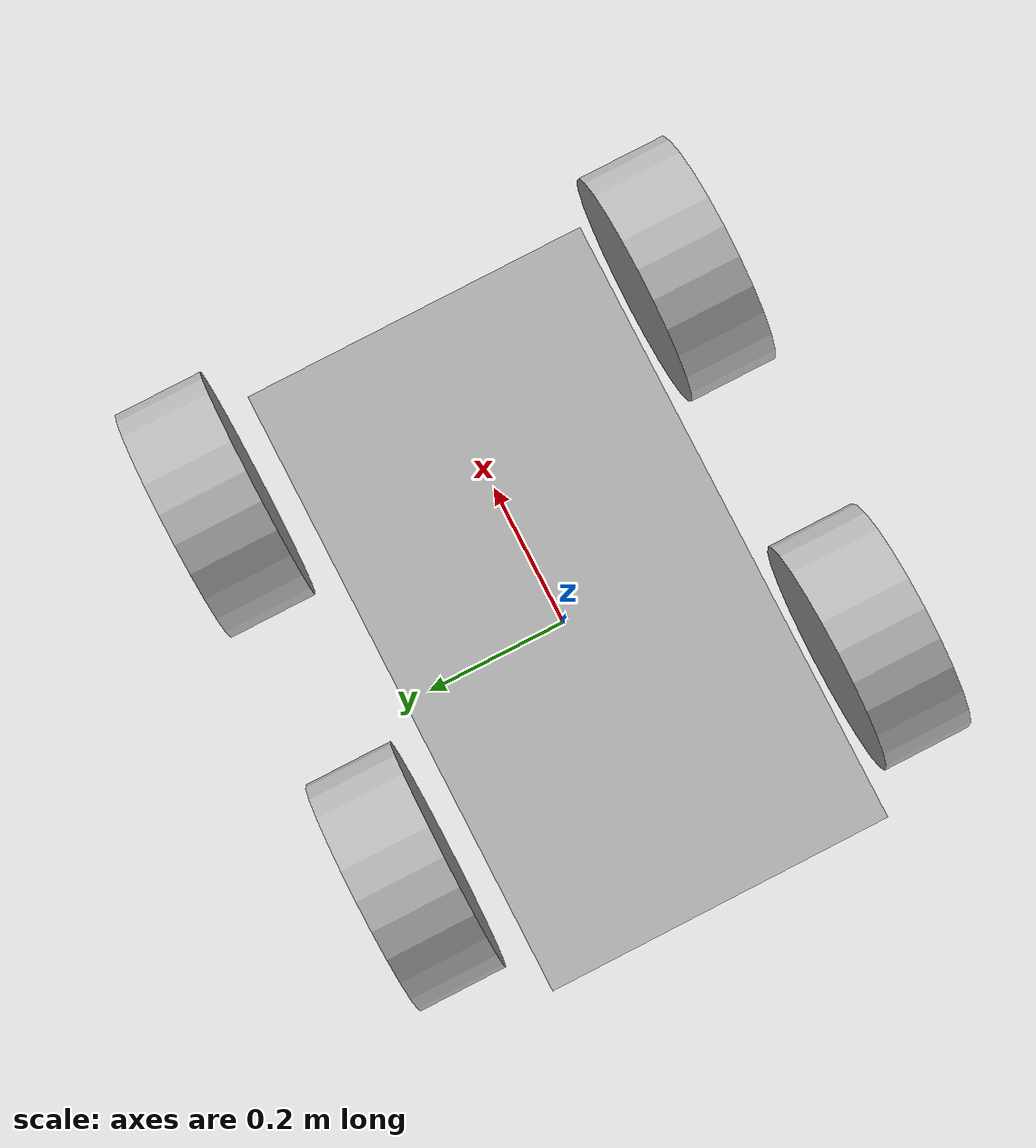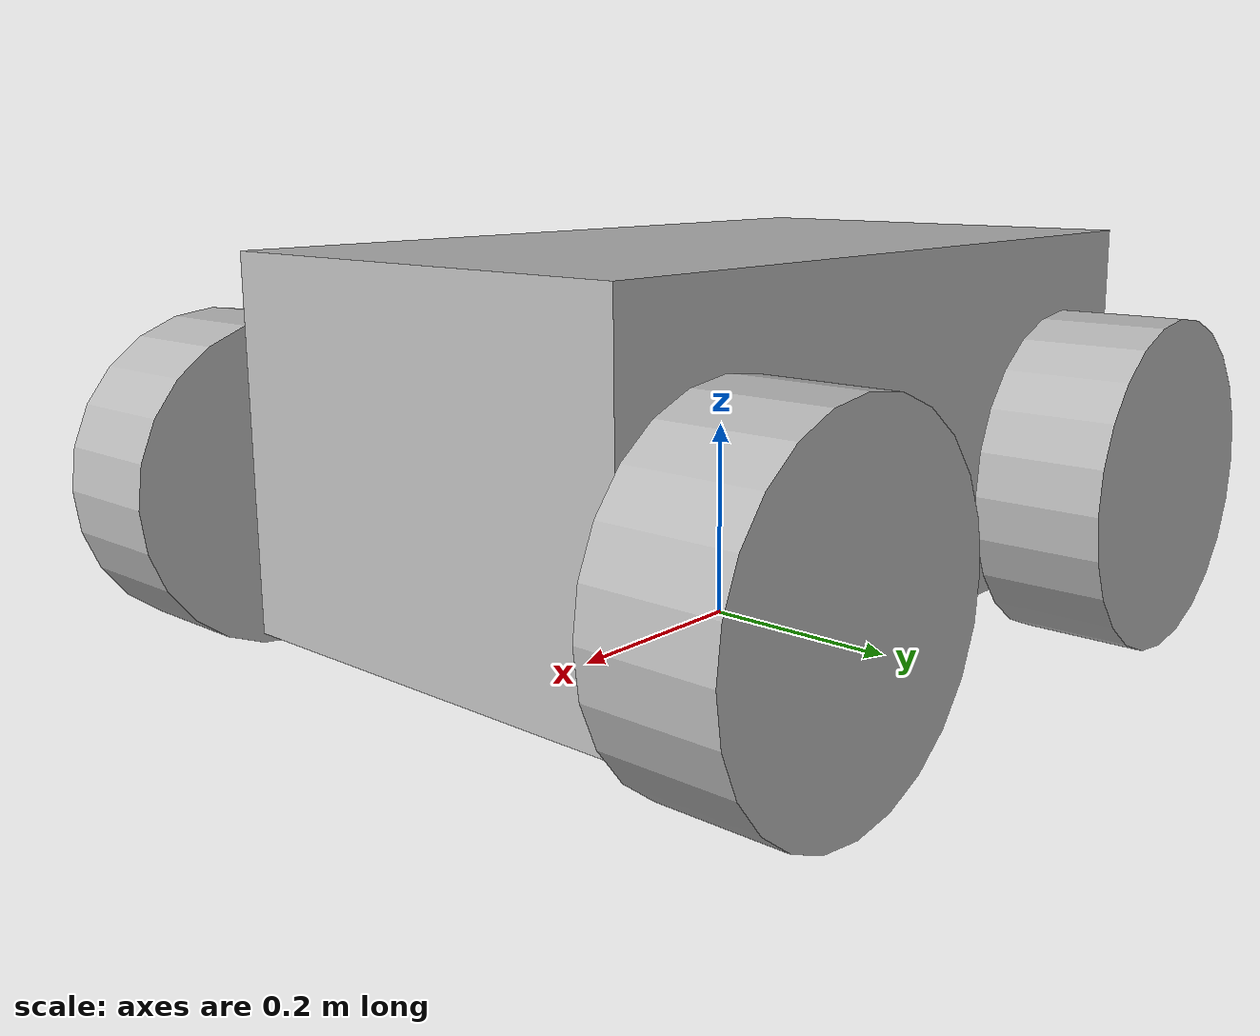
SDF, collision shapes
<?xml version="1.0" ?>

<sdf version="1.5">
  <model name="cart_soft_suspension">
    <link name="chassis">
      <pose>0 0 0.21 0 0 0</pose>
      <inertial>
        <pose>0.1 0 0  0 0 0</pose>
        <mass>40</mass>
        <inertia>
          <ixx>0.216666666666667</ixx>
          <iyy>0.841666666666667</iyy>
          <izz>1.04166666666667</izz>
          <ixy>0</ixy>
          <ixz>0</ixz>
          <iyz>0</iyz>
        </inertia>
      </inertial>
      <collision name='collision'>
        <geometry>
          <box>
            <size>.8 .45 .355</size>
          </box>
        </geometry>
        <surface>
          <friction>
            <ode>
              <mu>30</mu>
              <mu2>30</mu2>
            </ode>
          </friction>
        </surface>
      </collision>
      <visual name='visual'>
        <geometry>
          <mesh>
            <uri>model://gazebo_issue_1320/meshes/odg_alternate_skin.dae</uri>
            <scale>0.006 0.006 0.006</scale>
          </mesh>
        </geometry>
      </visual>
    </link>

    <link name="susp_front_right">
      <pose>0.33 -0.33 0.16  0 0 0</pose>
      <inertial>
        <mass>0.5</mass>
        <inertia>
          <ixx>0.000208333333333333</ixx>
          <iyy>0.000208333333333333</iyy>
          <izz>0.000208333333333333</izz>
          <ixy>0</ixy>
          <ixz>0</ixz>
          <iyz>0</iyz>
        </inertia>
      </inertial>
      <collision name="collision">
        <geometry>
          <box>
            <size>0.05 0.05 0.05</size>
          </box>
        </geometry>
      </collision>
      <visual name="visual">
        <geometry>
          <box>
            <size>0.05 0.05 0.05</size>
          </box>
        </geometry>
        <material>
          <script>
            <uri>gazebo.material</uri>
            <name>Gazebo/Black</name>
          </script>
        </material>
      </visual>
    </link>
    <joint name="susp_front_right_prismatic" type="prismatic">
      <parent>chassis</parent>
      <child>susp_front_right</child>
      <axis>
        <xyz>0 0 -1</xyz>
        <limit>
          <lower>-0.0375</lower>
          <upper>0.0375</upper>
        </limit>
        <dynamics>
          <damping>100</damping>
          <spring_stiffness>2500</spring_stiffness>
          <spring_reference>0.05</spring_reference>
        </dynamics>
      </axis>
      <physics>
        <ode>
          <implicit_spring_damper>1</implicit_spring_damper>
        </ode>
      </physics>
    </joint>
    <link name="wheel_front_right">
      <pose>0.33 -0.33 0.16 0 1.5707 1.5707</pose>
      <inertial>
        <mass>0.5</mass>
        <inertia>
          <ixx>0.00307916666666667</ixx>
          <iyy>0.00307916666666667</iyy>
          <izz>0.005625</izz>
          <ixy>0</ixy>
          <ixz>0</ixz>
          <iyz>0</iyz>
        </inertia>
      </inertial>
      <collision name="collision">
        <geometry>
          <cylinder>
            <radius>.16</radius>
            <length>.12</length>
          </cylinder>
        </geometry>
        <surface>
          <friction>
            <ode>
              <mu>30</mu>
              <mu2>30</mu2>
            </ode>
          </friction>
        </surface>
      </collision>

    </link>
    <joint name="wheel_front_right_spin" type="revolute">
      <pose>0 0 0.03 0 0 0</pose>
      <parent>susp_front_right</parent>
      <child>wheel_front_right</child>
      <axis>
        <xyz>0 0 1</xyz>
      </axis>
    </joint>

    <link name="susp_front_left">
      <pose>0.33 0.33 0.16  0 0 0</pose>
      <inertial>
        <mass>0.5</mass>
        <inertia>
          <ixx>0.000208333333333333</ixx>
          <iyy>0.000208333333333333</iyy>
          <izz>0.000208333333333333</izz>
          <ixy>0</ixy>
          <ixz>0</ixz>
          <iyz>0</iyz>
        </inertia>
      </inertial>
      <collision name="collision">
        <geometry>
          <box>
            <size>0.05 0.05 0.05</size>
          </box>
        </geometry>
      </collision>
      <visual name="visual">
        <geometry>
          <box>
            <size>0.05 0.05 0.05</size>
          </box>
        </geometry>
        <material>
          <script>
            <uri>gazebo.material</uri>
            <name>Gazebo/Black</name>
          </script>
        </material>
      </visual>
    </link>
    <joint name="susp_front_left_prismatic" type="prismatic">
      <parent>chassis</parent>
      <child>susp_front_left</child>
      <axis>
        <xyz>0 0 -1</xyz>
        <limit>
          <lower>-0.0375</lower>
          <upper>0.0375</upper>
        </limit>
        <dynamics>
          <damping>100</damping>
          <spring_stiffness>2500</spring_stiffness>
          <spring_reference>0.05</spring_reference>
        </dynamics>
      </axis>
      <physics>
        <ode>
          <implicit_spring_damper>1</implicit_spring_damper>
        </ode>
      </physics>
    </joint>
    <link name="wheel_front_left">
      <pose>0.33 0.33 0.16 0 1.5707 1.5707</pose>
      <inertial>
        <mass>0.5</mass>
        <inertia>
          <ixx>0.00307916666666667</ixx>
          <iyy>0.00307916666666667</iyy>
          <izz>0.005625</izz>
          <ixy>0</ixy>
          <ixz>0</ixz>
          <iyz>0</iyz>
        </inertia>
      </inertial>
      <collision name="collision">
        <geometry>
          <cylinder>
            <radius>.16</radius>
            <length>.12</length>
          </cylinder>
        </geometry>
        <surface>
          <friction>
            <ode>
              <mu>30</mu>
              <mu2>30</mu2>
            </ode>
          </friction>
        </surface>
      </collision>

    </link>
    <joint name="wheel_front_left_spin" type="revolute">
      <pose>0 0 -0.03 0 0 0</pose>
      <parent>susp_front_left</parent>
      <child>wheel_front_left</child>
      <axis>
        <xyz>0 0 1</xyz>
      </axis>
    </joint>

    <link name="susp_rear_right">
      <pose>-0.2 -0.33 0.16  0 0 0</pose>
      <inertial>
        <mass>0.5</mass>
        <inertia>
          <ixx>0.000208333333333333</ixx>
          <iyy>0.000208333333333333</iyy>
          <izz>0.000208333333333333</izz>
          <ixy>0</ixy>
          <ixz>0</ixz>
          <iyz>0</iyz>
        </inertia>
      </inertial>
      <collision name="collision">
        <geometry>
          <box>
            <size>0.05 0.05 0.05</size>
          </box>
        </geometry>
      </collision>
      <visual name="visual">
        <geometry>
          <box>
            <size>0.05 0.05 0.05</size>
          </box>
        </geometry>
        <material>
          <script>
            <uri>gazebo.material</uri>
            <name>Gazebo/Black</name>
          </script>
        </material>
      </visual>
    </link>
    <joint name="susp_rear_right_prismatic" type="prismatic">
      <parent>chassis</parent>
      <child>susp_rear_right</child>
      <axis>
        <xyz>0 0 -1</xyz>
        <limit>
          <lower>-0.0375</lower>
          <upper>0.0375</upper>
        </limit>
        <dynamics>
          <damping>100</damping>
          <spring_stiffness>2500</spring_stiffness>
          <spring_reference>0.05</spring_reference>
        </dynamics>
      </axis>
      <physics>
        <ode>
          <implicit_spring_damper>1</implicit_spring_damper>
        </ode>
      </physics>
    </joint>
    <link name="wheel_rear_right">
      <pose>-0.2 -0.33 0.16 0 1.5707 1.5707</pose>
      <inertial>
        <mass>0.5</mass>
        <inertia>
          <ixx>0.00307916666666667</ixx>
          <iyy>0.00307916666666667</iyy>
          <izz>0.005625</izz>
          <ixy>0</ixy>
          <ixz>0</ixz>
          <iyz>0</iyz>
        </inertia>
      </inertial>
      <collision name="collision">
        <geometry>
          <cylinder>
            <radius>.16</radius>
            <length>.12</length>
          </cylinder>
        </geometry>
        <surface>
          <friction>
            <ode>
              <mu>30</mu>
              <mu2>30</mu2>
            </ode>
          </friction>
        </surface>
      </collision>

    </link>
    <joint name="wheel_rear_right_spin" type="revolute">
      <pose>0 0 0.03 0 0 0</pose>
      <parent>susp_rear_right</parent>
      <child>wheel_rear_right</child>
      <axis>
        <xyz>0 0 1</xyz>
      </axis>
    </joint>

    <link name="susp_rear_left">
      <pose>-0.2 0.33 0.16  0 0 0</pose>
      <inertial>
        <mass>0.5</mass>
        <inertia>
          <ixx>0.000208333333333333</ixx>
          <iyy>0.000208333333333333</iyy>
          <izz>0.000208333333333333</izz>
          <ixy>0</ixy>
          <ixz>0</ixz>
          <iyz>0</iyz>
        </inertia>
      </inertial>
      <collision name="collision">
        <geometry>
          <box>
            <size>0.05 0.05 0.05</size>
          </box>
        </geometry>
      </collision>
      <visual name="visual">
        <geometry>
          <box>
            <size>0.05 0.05 0.05</size>
          </box>
        </geometry>
        <material>
          <script>
            <uri>gazebo.material</uri>
            <name>Gazebo/Black</name>
          </script>
        </material>
      </visual>
    </link>
    <joint name="susp_rear_left_prismatic" type="prismatic">
      <parent>chassis</parent>
      <child>susp_rear_left</child>
      <axis>
        <xyz>0 0 -1</xyz>
        <limit>
          <lower>-0.0375</lower>
          <upper>0.0375</upper>
        </limit>
        <dynamics>
          <damping>100</damping>
          <spring_stiffness>2500</spring_stiffness>
          <spring_reference>0.05</spring_reference>
        </dynamics>
      </axis>
      <physics>
        <ode>
          <implicit_spring_damper>1</implicit_spring_damper>
        </ode>
      </physics>
    </joint>
    <link name="wheel_rear_left">
      <pose>-0.2 0.33 0.16 0 1.5707 1.5707</pose>
      <inertial>
        <mass>0.5</mass>
        <inertia>
          <ixx>0.00307916666666667</ixx>
          <iyy>0.00307916666666667</iyy>
          <izz>0.005625</izz>
          <ixy>0</ixy>
          <ixz>0</ixz>
          <iyz>0</iyz>
        </inertia>
      </inertial>
      <collision name="collision">
        <geometry>
          <cylinder>
            <radius>.16</radius>
            <length>.12</length>
          </cylinder>
        </geometry>
        <surface>
          <friction>
            <ode>
              <mu>30</mu>
              <mu2>30</mu2>
            </ode>
          </friction>
        </surface>
      </collision>

    </link>
    <joint name="wheel_rear_left_spin" type="revolute">
      <pose>0 0 -0.03 0 0 0</pose>
      <parent>susp_rear_left</parent>
      <child>wheel_rear_left</child>
      <axis>
        <xyz>0 0 1</xyz>
      </axis>
    </joint>

  </model>
</sdf>
